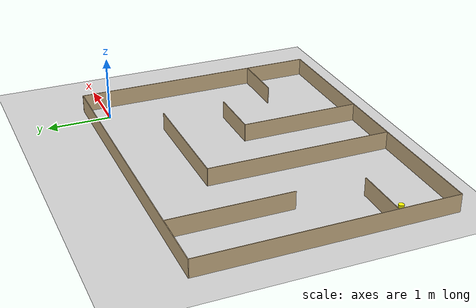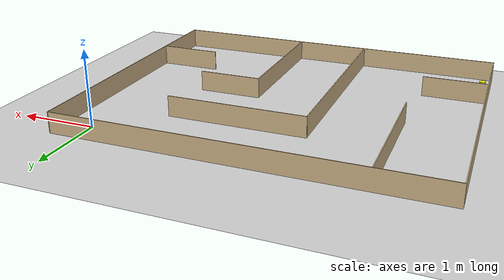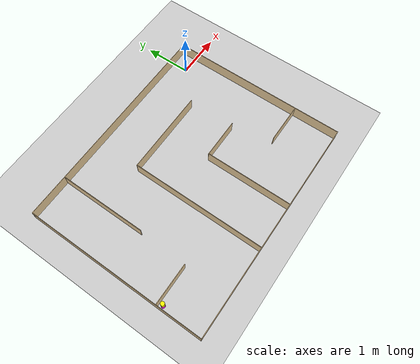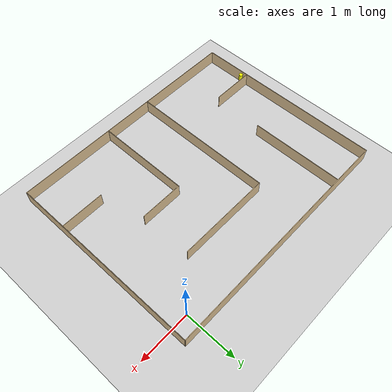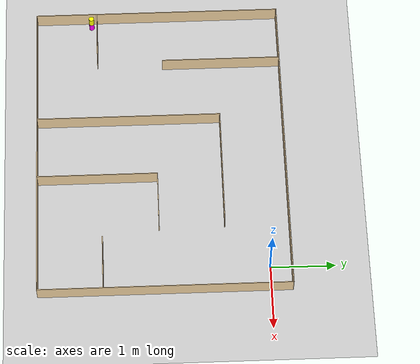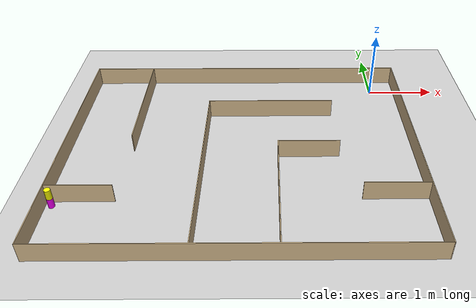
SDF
<sdf version="1.4">
  <world name="default">

    <scene>
      <ambient>0.4 0.4 0.4 1</ambient>
      <background>0.7 0.7 0.7 1</background>
      <shadows>true</shadows>
    </scene>

    <!-- A global light source -->
    <include>
      <uri>model://sun</uri>
    </include>

    <!-- A ground plane -->
    <include>
      <uri>model://ground_plane</uri>
    </include>

    <!-- My Maze -->
    <include>
      <uri>model://maze_4</uri>
	<pose>-2.05 -1.60 0 0 0 0</pose>
    </include>

    <!-- My Beacon -->
    <include>
      <uri>model://beacon_4</uri>
	<pose>-4.39 -2.65 0 0 0 0</pose>
    </include>

    <physics type="ode">
      <real_time_update_rate>1000.0</real_time_update_rate>
      <max_step_size>0.001</max_step_size>
      <real_time_factor>1</real_time_factor>
      <ode>
        <solver>
          <type>quick</type>
          <iters>150</iters>
          <precon_iters>0</precon_iters>
          <sor>1.400000</sor>
          <use_dynamic_moi_rescaling>1</use_dynamic_moi_rescaling>
        </solver>
        <constraints>
          <cfm>0.00001</cfm>
          <erp>0.2</erp>
          <contact_max_correcting_vel>2000.000000</contact_max_correcting_vel>
          <contact_surface_layer>0.01000</contact_surface_layer>
        </constraints>
      </ode>
    </physics>
  </world>

</sdf>

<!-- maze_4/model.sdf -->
<sdf version='1.6'>
  <model name='maze_4'>
    <link name='Wall_0'>
      <pose frame=''>0 -1.925 0 0 -0 0</pose>
      <self_collide>0</self_collide>
      <kinematic>0</kinematic>
      <visual name='Wall_0_Visual'>
        <pose frame=''>0 0 0.14 0 -0 0</pose>
        <geometry>
          <box>
            <size>4.86 0.01 0.28</size>
          </box>
        </geometry>
        <material>
          <script>
            <uri>file://media/materials/scripts/gazebo.material</uri>
            <name>Gazebo/Grey</name>
          </script>
          <ambient>0.921569 0.807843 0.615686 1</ambient>
          <diffuse>0.7 0.7 0.7 1</diffuse>
          <specular>0.01 0.01 0.01 1</specular>
          <emissive>0 0 0 1</emissive>
        </material>
        <cast_shadows>1</cast_shadows>
        <transparency>0</transparency>
      </visual>
      <collision name='Wall_0_Collision'>
        <laser_retro>0</laser_retro>
        <max_contacts>10</max_contacts>
        <pose frame=''>0 0 0.14 0 -0 0</pose>
        <geometry>
          <box>
            <size>4.86 0.01 0.28</size>
          </box>
        </geometry>
        <surface>
          <friction>
            <ode>
              <mu>1</mu>
              <mu2>1</mu2>
              <fdir1>0 0 0</fdir1>
              <slip1>0</slip1>
              <slip2>0</slip2>
            </ode>
            <torsional>
              <coefficient>1</coefficient>
              <patch_radius>0</patch_radius>
              <surface_radius>0</surface_radius>
              <use_patch_radius>1</use_patch_radius>
              <ode>
                <slip>0</slip>
              </ode>
            </torsional>
          </friction>
          <bounce>
            <restitution_coefficient>0</restitution_coefficient>
            <threshold>1e+06</threshold>
          </bounce>
          <contact>
            <collide_without_contact>0</collide_without_contact>
            <collide_without_contact_bitmask>1</collide_without_contact_bitmask>
            <collide_bitmask>1</collide_bitmask>
            <ode>
              <soft_cfm>0</soft_cfm>
              <soft_erp>0.2</soft_erp>
              <kp>1e+13</kp>
              <kd>1</kd>
              <max_vel>0.01</max_vel>
              <min_depth>0</min_depth>
            </ode>
            <bullet>
              <split_impulse>1</split_impulse>
              <split_impulse_penetration_threshold>-0.01</split_impulse_penetration_threshold>
              <soft_cfm>0</soft_cfm>
              <soft_erp>0.2</soft_erp>
              <kp>1e+13</kp>
              <kd>1</kd>
            </bullet>
          </contact>
        </surface>
      </collision>
    </link>
    <link name='Wall_1'>
      <pose frame=''>2.425 0 0 0 -0 1.5708</pose>
      <self_collide>0</self_collide>
      <kinematic>0</kinematic>
      <visual name='Wall_1_Visual'>
        <pose frame=''>0 0 0.14 0 -0 0</pose>
        <geometry>
          <box>
            <size>3.86 0.01 0.28</size>
          </box>
        </geometry>
        <material>
          <script>
            <uri>file://media/materials/scripts/gazebo.material</uri>
            <name>Gazebo/Grey</name>
          </script>
          <ambient>0.921569 0.807843 0.615686 1</ambient>
          <diffuse>0.7 0.7 0.7 1</diffuse>
          <specular>0.01 0.01 0.01 1</specular>
          <emissive>0 0 0 1</emissive>
        </material>
        <cast_shadows>1</cast_shadows>
        <transparency>0</transparency>
      </visual>
      <collision name='Wall_1_Collision'>
        <laser_retro>0</laser_retro>
        <max_contacts>10</max_contacts>
        <pose frame=''>0 0 0.14 0 -0 0</pose>
        <geometry>
          <box>
            <size>3.86 0.01 0.28</size>
          </box>
        </geometry>
        <surface>
          <friction>
            <ode>
              <mu>1</mu>
              <mu2>1</mu2>
              <fdir1>0 0 0</fdir1>
              <slip1>0</slip1>
              <slip2>0</slip2>
            </ode>
            <torsional>
              <coefficient>1</coefficient>
              <patch_radius>0</patch_radius>
              <surface_radius>0</surface_radius>
              <use_patch_radius>1</use_patch_radius>
              <ode>
                <slip>0</slip>
              </ode>
            </torsional>
          </friction>
          <bounce>
            <restitution_coefficient>0</restitution_coefficient>
            <threshold>1e+06</threshold>
          </bounce>
          <contact>
            <collide_without_contact>0</collide_without_contact>
            <collide_without_contact_bitmask>1</collide_without_contact_bitmask>
            <collide_bitmask>1</collide_bitmask>
            <ode>
              <soft_cfm>0</soft_cfm>
              <soft_erp>0.2</soft_erp>
              <kp>1e+13</kp>
              <kd>1</kd>
              <max_vel>0.01</max_vel>
              <min_depth>0</min_depth>
            </ode>
            <bullet>
              <split_impulse>1</split_impulse>
              <split_impulse_penetration_threshold>-0.01</split_impulse_penetration_threshold>
              <soft_cfm>0</soft_cfm>
              <soft_erp>0.2</soft_erp>
              <kp>1e+13</kp>
              <kd>1</kd>
            </bullet>
          </contact>
        </surface>
      </collision>
    </link>
    <link name='Wall_10'>
      <pose frame=''>0.413 0.938753 0 0 -0 0</pose>
      <self_collide>0</self_collide>
      <kinematic>0</kinematic>
      <visual name='Wall_10_Visual'>
        <pose frame=''>0 0 0.14 0 -0 0</pose>
        <geometry>
          <box>
            <size>1.85977 0.01 0.28</size>
          </box>
        </geometry>
        <material>
          <script>
            <uri>file://media/materials/scripts/gazebo.material</uri>
            <name>Gazebo/Grey</name>
          </script>
          <ambient>0.921569 0.807843 0.615686 1</ambient>
          <diffuse>0.7 0.7 0.7 1</diffuse>
          <specular>0.01 0.01 0.01 1</specular>
          <emissive>0 0 0 1</emissive>
        </material>
        <cast_shadows>1</cast_shadows>
        <transparency>0</transparency>
      </visual>
      <collision name='Wall_10_Collision'>
        <laser_retro>0</laser_retro>
        <max_contacts>10</max_contacts>
        <pose frame=''>0 0 0.14 0 -0 0</pose>
        <geometry>
          <box>
            <size>1.85977 0.01 0.28</size>
          </box>
        </geometry>
        <surface>
          <friction>
            <ode>
              <mu>1</mu>
              <mu2>1</mu2>
              <fdir1>0 0 0</fdir1>
              <slip1>0</slip1>
              <slip2>0</slip2>
            </ode>
            <torsional>
              <coefficient>1</coefficient>
              <patch_radius>0</patch_radius>
              <surface_radius>0</surface_radius>
              <use_patch_radius>1</use_patch_radius>
              <ode>
                <slip>0</slip>
              </ode>
            </torsional>
          </friction>
          <bounce>
            <restitution_coefficient>0</restitution_coefficient>
            <threshold>1e+06</threshold>
          </bounce>
          <contact>
            <collide_without_contact>0</collide_without_contact>
            <collide_without_contact_bitmask>1</collide_without_contact_bitmask>
            <collide_bitmask>1</collide_bitmask>
            <ode>
              <soft_cfm>0</soft_cfm>
              <soft_erp>0.2</soft_erp>
              <kp>1e+13</kp>
              <kd>1</kd>
              <max_vel>0.01</max_vel>
              <min_depth>0</min_depth>
            </ode>
            <bullet>
              <split_impulse>1</split_impulse>
              <split_impulse_penetration_threshold>-0.01</split_impulse_penetration_threshold>
              <soft_cfm>0</soft_cfm>
              <soft_erp>0.2</soft_erp>
              <kp>1e+13</kp>
              <kd>1</kd>
            </bullet>
          </contact>
        </surface>
      </collision>
    </link>
    <link name='Wall_12'>
      <pose frame=''>0.509 -0.996252 0 0 -0 1.5708</pose>
      <self_collide>0</self_collide>
      <kinematic>0</kinematic>
      <visual name='Wall_12_Visual'>
        <pose frame=''>0 0 0.14 0 -0 0</pose>
        <geometry>
          <box>
            <size>1.8597 0.01 0.28</size>
          </box>
        </geometry>
        <material>
          <script>
            <uri>file://media/materials/scripts/gazebo.material</uri>
            <name>Gazebo/Grey</name>
          </script>
          <ambient>0.921569 0.807843 0.615686 1</ambient>
          <diffuse>0.7 0.7 0.7 1</diffuse>
          <specular>0.01 0.01 0.01 1</specular>
          <emissive>0 0 0 1</emissive>
        </material>
        <cast_shadows>1</cast_shadows>
        <transparency>0</transparency>
      </visual>
      <collision name='Wall_12_Collision'>
        <laser_retro>0</laser_retro>
        <max_contacts>10</max_contacts>
        <pose frame=''>0 0 0.14 0 -0 0</pose>
        <geometry>
          <box>
            <size>1.8597 0.01 0.28</size>
          </box>
        </geometry>
        <surface>
          <friction>
            <ode>
              <mu>1</mu>
              <mu2>1</mu2>
              <fdir1>0 0 0</fdir1>
              <slip1>0</slip1>
              <slip2>0</slip2>
            </ode>
            <torsional>
              <coefficient>1</coefficient>
              <patch_radius>0</patch_radius>
              <surface_radius>0</surface_radius>
              <use_patch_radius>1</use_patch_radius>
              <ode>
                <slip>0</slip>
              </ode>
            </torsional>
          </friction>
          <bounce>
            <restitution_coefficient>0</restitution_coefficient>
            <threshold>1e+06</threshold>
          </bounce>
          <contact>
            <collide_without_contact>0</collide_without_contact>
            <collide_without_contact_bitmask>1</collide_without_contact_bitmask>
            <collide_bitmask>1</collide_bitmask>
            <ode>
              <soft_cfm>0</soft_cfm>
              <soft_erp>0.2</soft_erp>
              <kp>1e+13</kp>
              <kd>1</kd>
              <max_vel>0.01</max_vel>
              <min_depth>0</min_depth>
            </ode>
            <bullet>
              <split_impulse>1</split_impulse>
              <split_impulse_penetration_threshold>-0.01</split_impulse_penetration_threshold>
              <soft_cfm>0</soft_cfm>
              <soft_erp>0.2</soft_erp>
              <kp>1e+13</kp>
              <kd>1</kd>
            </bullet>
          </contact>
        </surface>
      </collision>
    </link>
    <link name='Wall_13'>
      <pose frame=''>0.934 -0.066769 0 0 -0 0</pose>
      <self_collide>0</self_collide>
      <kinematic>0</kinematic>
      <visual name='Wall_13_Visual'>
        <pose frame=''>0 0 0.14 0 -0 0</pose>
        <geometry>
          <box>
            <size>0.85956 0.01 0.28</size>
          </box>
        </geometry>
        <material>
          <script>
            <uri>file://media/materials/scripts/gazebo.material</uri>
            <name>Gazebo/Grey</name>
          </script>
          <ambient>0.921569 0.807843 0.615686 1</ambient>
          <diffuse>0.7 0.7 0.7 1</diffuse>
          <specular>0.01 0.01 0.01 1</specular>
          <emissive>0 0 0 1</emissive>
        </material>
        <cast_shadows>1</cast_shadows>
        <transparency>0</transparency>
      </visual>
      <collision name='Wall_13_Collision'>
        <laser_retro>0</laser_retro>
        <max_contacts>10</max_contacts>
        <pose frame=''>0 0 0.14 0 -0 0</pose>
        <geometry>
          <box>
            <size>0.85956 0.01 0.28</size>
          </box>
        </geometry>
        <surface>
          <friction>
            <ode>
              <mu>1</mu>
              <mu2>1</mu2>
              <fdir1>0 0 0</fdir1>
              <slip1>0</slip1>
              <slip2>0</slip2>
            </ode>
            <torsional>
              <coefficient>1</coefficient>
              <patch_radius>0</patch_radius>
              <surface_radius>0</surface_radius>
              <use_patch_radius>1</use_patch_radius>
              <ode>
                <slip>0</slip>
              </ode>
            </torsional>
          </friction>
          <bounce>
            <restitution_coefficient>0</restitution_coefficient>
            <threshold>1e+06</threshold>
          </bounce>
          <contact>
            <collide_without_contact>0</collide_without_contact>
            <collide_without_contact_bitmask>1</collide_without_contact_bitmask>
            <collide_bitmask>1</collide_bitmask>
            <ode>
              <soft_cfm>0</soft_cfm>
              <soft_erp>0.2</soft_erp>
              <kp>1e+13</kp>
              <kd>1</kd>
              <max_vel>0.01</max_vel>
              <min_depth>0</min_depth>
            </ode>
            <bullet>
              <split_impulse>1</split_impulse>
              <split_impulse_penetration_threshold>-0.01</split_impulse_penetration_threshold>
              <soft_cfm>0</soft_cfm>
              <soft_erp>0.2</soft_erp>
              <kp>1e+13</kp>
              <kd>1</kd>
            </bullet>
          </contact>
        </surface>
      </collision>
    </link>
    <link name='Wall_15'>
      <pose frame=''>1.997 -0.934 0 0 -0 3.14159</pose>
      <self_collide>0</self_collide>
      <kinematic>0</kinematic>
      <visual name='Wall_15_Visual'>
        <pose frame=''>0 0 0.14 0 -0 0</pose>
        <geometry>
          <box>
            <size>0.860397 0.01 0.28</size>
          </box>
        </geometry>
        <material>
          <script>
            <uri>file://media/materials/scripts/gazebo.material</uri>
            <name>Gazebo/Grey</name>
          </script>
          <ambient>0.921569 0.807843 0.615686 1</ambient>
          <diffuse>0.7 0.7 0.7 1</diffuse>
          <specular>0.01 0.01 0.01 1</specular>
          <emissive>0 0 0 1</emissive>
        </material>
        <cast_shadows>1</cast_shadows>
        <transparency>0</transparency>
      </visual>
      <collision name='Wall_15_Collision'>
        <laser_retro>0</laser_retro>
        <max_contacts>10</max_contacts>
        <pose frame=''>0 0 0.14 0 -0 0</pose>
        <geometry>
          <box>
            <size>0.860397 0.01 0.28</size>
          </box>
        </geometry>
        <surface>
          <friction>
            <ode>
              <mu>1</mu>
              <mu2>1</mu2>
              <fdir1>0 0 0</fdir1>
              <slip1>0</slip1>
              <slip2>0</slip2>
            </ode>
            <torsional>
              <coefficient>1</coefficient>
              <patch_radius>0</patch_radius>
              <surface_radius>0</surface_radius>
              <use_patch_radius>1</use_patch_radius>
              <ode>
                <slip>0</slip>
              </ode>
            </torsional>
          </friction>
          <bounce>
            <restitution_coefficient>0</restitution_coefficient>
            <threshold>1e+06</threshold>
          </bounce>
          <contact>
            <collide_without_contact>0</collide_without_contact>
            <collide_without_contact_bitmask>1</collide_without_contact_bitmask>
            <collide_bitmask>1</collide_bitmask>
            <ode>
              <soft_cfm>0</soft_cfm>
              <soft_erp>0.2</soft_erp>
              <kp>1e+13</kp>
              <kd>1</kd>
              <max_vel>0.01</max_vel>
              <min_depth>0</min_depth>
            </ode>
            <bullet>
              <split_impulse>1</split_impulse>
              <split_impulse_penetration_threshold>-0.01</split_impulse_penetration_threshold>
              <soft_cfm>0</soft_cfm>
              <soft_erp>0.2</soft_erp>
              <kp>1e+13</kp>
              <kd>1</kd>
            </bullet>
          </contact>
        </surface>
      </collision>
    </link>
    <link name='Wall_2'>
      <pose frame=''>0 1.925 0 0 -0 3.14159</pose>
      <self_collide>0</self_collide>
      <kinematic>0</kinematic>
      <visual name='Wall_2_Visual'>
        <pose frame=''>0 0 0.14 0 -0 0</pose>
        <geometry>
          <box>
            <size>4.86028 0.01 0.28</size>
          </box>
        </geometry>
        <material>
          <script>
            <uri>file://media/materials/scripts/gazebo.material</uri>
            <name>Gazebo/Grey</name>
          </script>
          <ambient>0.921569 0.807843 0.615686 1</ambient>
          <diffuse>0.7 0.7 0.7 1</diffuse>
          <specular>0.01 0.01 0.01 1</specular>
          <emissive>0 0 0 1</emissive>
        </material>
        <cast_shadows>1</cast_shadows>
        <transparency>0</transparency>
      </visual>
      <collision name='Wall_2_Collision'>
        <laser_retro>0</laser_retro>
        <max_contacts>10</max_contacts>
        <pose frame=''>0 0 0.14 0 -0 0</pose>
        <geometry>
          <box>
            <size>4.86028 0.01 0.28</size>
          </box>
        </geometry>
        <surface>
          <friction>
            <ode>
              <mu>1</mu>
              <mu2>1</mu2>
              <fdir1>0 0 0</fdir1>
              <slip1>0</slip1>
              <slip2>0</slip2>
            </ode>
            <torsional>
              <coefficient>1</coefficient>
              <patch_radius>0</patch_radius>
              <surface_radius>0</surface_radius>
              <use_patch_radius>1</use_patch_radius>
              <ode>
                <slip>0</slip>
              </ode>
            </torsional>
          </friction>
          <bounce>
            <restitution_coefficient>0</restitution_coefficient>
            <threshold>1e+06</threshold>
          </bounce>
          <contact>
            <collide_without_contact>0</collide_without_contact>
            <collide_without_contact_bitmask>1</collide_without_contact_bitmask>
            <collide_bitmask>1</collide_bitmask>
            <ode>
              <soft_cfm>0</soft_cfm>
              <soft_erp>0.2</soft_erp>
              <kp>1e+13</kp>
              <kd>1</kd>
              <max_vel>0.01</max_vel>
              <min_depth>0</min_depth>
            </ode>
            <bullet>
              <split_impulse>1</split_impulse>
              <split_impulse_penetration_threshold>-0.01</split_impulse_penetration_threshold>
              <soft_cfm>0</soft_cfm>
              <soft_erp>0.2</soft_erp>
              <kp>1e+13</kp>
              <kd>1</kd>
            </bullet>
          </contact>
        </surface>
      </collision>
    </link>
    <link name='Wall_3'>
      <pose frame=''>-2.425 0 0 0 0 -1.5708</pose>
      <self_collide>0</self_collide>
      <kinematic>0</kinematic>
      <visual name='Wall_3_Visual'>
        <pose frame=''>0 0 0.14 0 -0 0</pose>
        <geometry>
          <box>
            <size>3.85967 0.01 0.28</size>
          </box>
        </geometry>
        <material>
          <script>
            <uri>file://media/materials/scripts/gazebo.material</uri>
            <name>Gazebo/Grey</name>
          </script>
          <ambient>0.921569 0.807843 0.615686 1</ambient>
          <diffuse>0.7 0.7 0.7 1</diffuse>
          <specular>0.01 0.01 0.01 1</specular>
          <emissive>0 0 0 1</emissive>
        </material>
        <cast_shadows>1</cast_shadows>
        <transparency>0</transparency>
      </visual>
      <collision name='Wall_3_Collision'>
        <laser_retro>0</laser_retro>
        <max_contacts>10</max_contacts>
        <pose frame=''>0 0 0.14 0 -0 0</pose>
        <geometry>
          <box>
            <size>3.85967 0.01 0.28</size>
          </box>
        </geometry>
        <surface>
          <friction>
            <ode>
              <mu>1</mu>
              <mu2>1</mu2>
              <fdir1>0 0 0</fdir1>
              <slip1>0</slip1>
              <slip2>0</slip2>
            </ode>
            <torsional>
              <coefficient>1</coefficient>
              <patch_radius>0</patch_radius>
              <surface_radius>0</surface_radius>
              <use_patch_radius>1</use_patch_radius>
              <ode>
                <slip>0</slip>
              </ode>
            </torsional>
          </friction>
          <bounce>
            <restitution_coefficient>0</restitution_coefficient>
            <threshold>1e+06</threshold>
          </bounce>
          <contact>
            <collide_without_contact>0</collide_without_contact>
            <collide_without_contact_bitmask>1</collide_without_contact_bitmask>
            <collide_bitmask>1</collide_bitmask>
            <ode>
              <soft_cfm>0</soft_cfm>
              <soft_erp>0.2</soft_erp>
              <kp>1e+13</kp>
              <kd>1</kd>
              <max_vel>0.01</max_vel>
              <min_depth>0</min_depth>
            </ode>
            <bullet>
              <split_impulse>1</split_impulse>
              <split_impulse_penetration_threshold>-0.01</split_impulse_penetration_threshold>
              <soft_cfm>0</soft_cfm>
              <soft_erp>0.2</soft_erp>
              <kp>1e+13</kp>
              <kd>1</kd>
            </bullet>
          </contact>
        </surface>
      </collision>
    </link>
    <link name='Wall_5'>
      <pose frame=''>-1.993 -0.964 0 0 -0 0</pose>
      <self_collide>0</self_collide>
      <kinematic>0</kinematic>
      <visual name='Wall_5_Visual'>
        <pose frame=''>0 0 0.14 0 -0 0</pose>
        <geometry>
          <box>
            <size>0.860284 0.01 0.28</size>
          </box>
        </geometry>
        <material>
          <script>
            <uri>file://media/materials/scripts/gazebo.material</uri>
            <name>Gazebo/Grey</name>
          </script>
          <ambient>0.921569 0.807843 0.615686 1</ambient>
          <diffuse>0.7 0.7 0.7 1</diffuse>
          <specular>0.01 0.01 0.01 1</specular>
          <emissive>0 0 0 1</emissive>
        </material>
        <cast_shadows>1</cast_shadows>
        <transparency>0</transparency>
      </visual>
      <collision name='Wall_5_Collision'>
        <laser_retro>0</laser_retro>
        <max_contacts>10</max_contacts>
        <pose frame=''>0 0 0.14 0 -0 0</pose>
        <geometry>
          <box>
            <size>0.860284 0.01 0.28</size>
          </box>
        </geometry>
        <surface>
          <friction>
            <ode>
              <mu>1</mu>
              <mu2>1</mu2>
              <fdir1>0 0 0</fdir1>
              <slip1>0</slip1>
              <slip2>0</slip2>
            </ode>
            <torsional>
              <coefficient>1</coefficient>
              <patch_radius>0</patch_radius>
              <surface_radius>0</surface_radius>
              <use_patch_radius>1</use_patch_radius>
              <ode>
                <slip>0</slip>
              </ode>
            </torsional>
          </friction>
          <bounce>
            <restitution_coefficient>0</restitution_coefficient>
            <threshold>1e+06</threshold>
          </bounce>
          <contact>
            <collide_without_contact>0</collide_without_contact>
            <collide_without_contact_bitmask>1</collide_without_contact_bitmask>
            <collide_bitmask>1</collide_bitmask>
            <ode>
              <soft_cfm>0</soft_cfm>
              <soft_erp>0.2</soft_erp>
              <kp>1e+13</kp>
              <kd>1</kd>
              <max_vel>0.01</max_vel>
              <min_depth>0</min_depth>
            </ode>
            <bullet>
              <split_impulse>1</split_impulse>
              <split_impulse_penetration_threshold>-0.01</split_impulse_penetration_threshold>
              <soft_cfm>0</soft_cfm>
              <soft_erp>0.2</soft_erp>
              <kp>1e+13</kp>
              <kd>1</kd>
            </bullet>
          </contact>
        </surface>
      </collision>
    </link>
    <link name='Wall_7'>
      <pose frame=''>-1.52173 0.99369 0 0 0 -1.5708</pose>
      <self_collide>0</self_collide>
      <kinematic>0</kinematic>
      <visual name='Wall_7_Visual'>
        <pose frame=''>0 0 0.14 0 -0 0</pose>
        <geometry>
          <box>
            <size>1.86 0.01 0.28</size>
          </box>
        </geometry>
        <material>
          <script>
            <uri>file://media/materials/scripts/gazebo.material</uri>
            <name>Gazebo/Grey</name>
          </script>
          <ambient>0.921569 0.807843 0.615686 1</ambient>
          <diffuse>0.7 0.7 0.7 1</diffuse>
          <specular>0.01 0.01 0.01 1</specular>
          <emissive>0 0 0 1</emissive>
        </material>
        <cast_shadows>1</cast_shadows>
        <transparency>0</transparency>
      </visual>
      <collision name='Wall_7_Collision'>
        <laser_retro>0</laser_retro>
        <max_contacts>10</max_contacts>
        <pose frame=''>0 0 0.14 0 -0 0</pose>
        <geometry>
          <box>
            <size>1.86 0.01 0.28</size>
          </box>
        </geometry>
        <surface>
          <friction>
            <ode>
              <mu>1</mu>
              <mu2>1</mu2>
              <fdir1>0 0 0</fdir1>
              <slip1>0</slip1>
              <slip2>0</slip2>
            </ode>
            <torsional>
              <coefficient>1</coefficient>
              <patch_radius>0</patch_radius>
              <surface_radius>0</surface_radius>
              <use_patch_radius>1</use_patch_radius>
              <ode>
                <slip>0</slip>
              </ode>
            </torsional>
          </friction>
          <bounce>
            <restitution_coefficient>0</restitution_coefficient>
            <threshold>1e+06</threshold>
          </bounce>
          <contact>
            <collide_without_contact>0</collide_without_contact>
            <collide_without_contact_bitmask>1</collide_without_contact_bitmask>
            <collide_bitmask>1</collide_bitmask>
            <ode>
              <soft_cfm>0</soft_cfm>
              <soft_erp>0.2</soft_erp>
              <kp>1e+13</kp>
              <kd>1</kd>
              <max_vel>0.01</max_vel>
              <min_depth>0</min_depth>
            </ode>
            <bullet>
              <split_impulse>1</split_impulse>
              <split_impulse_penetration_threshold>-0.01</split_impulse_penetration_threshold>
              <soft_cfm>0</soft_cfm>
              <soft_erp>0.2</soft_erp>
              <kp>1e+13</kp>
              <kd>1</kd>
            </bullet>
          </contact>
        </surface>
      </collision>
    </link>
    <link name='Wall_9'>
      <pose frame=''>-0.512 -0.494441 0 0 -0 1.5708</pose>
      <self_collide>0</self_collide>
      <kinematic>0</kinematic>
      <visual name='Wall_9_Visual'>
        <pose frame=''>0 0 0.14 0 -0 0</pose>
        <geometry>
          <box>
            <size>2.86 0.01 0.28</size>
          </box>
        </geometry>
        <material>
          <script>
            <uri>file://media/materials/scripts/gazebo.material</uri>
            <name>Gazebo/Grey</name>
          </script>
          <ambient>0.921569 0.807843 0.615686 1</ambient>
          <diffuse>0.7 0.7 0.7 1</diffuse>
          <specular>0.01 0.01 0.01 1</specular>
          <emissive>0 0 0 1</emissive>
        </material>
        <cast_shadows>1</cast_shadows>
        <transparency>0</transparency>
      </visual>
      <collision name='Wall_9_Collision'>
        <laser_retro>0</laser_retro>
        <max_contacts>10</max_contacts>
        <pose frame=''>0 0 0.14 0 -0 0</pose>
        <geometry>
          <box>
            <size>2.86 0.01 0.28</size>
          </box>
        </geometry>
        <surface>
          <friction>
            <ode>
              <mu>1</mu>
              <mu2>1</mu2>
              <fdir1>0 0 0</fdir1>
              <slip1>0</slip1>
              <slip2>0</slip2>
            </ode>
            <torsional>
              <coefficient>1</coefficient>
              <patch_radius>0</patch_radius>
              <surface_radius>0</surface_radius>
              <use_patch_radius>1</use_patch_radius>
              <ode>
                <slip>0</slip>
              </ode>
            </torsional>
          </friction>
          <bounce>
            <restitution_coefficient>0</restitution_coefficient>
            <threshold>1e+06</threshold>
          </bounce>
          <contact>
            <collide_without_contact>0</collide_without_contact>
            <collide_without_contact_bitmask>1</collide_without_contact_bitmask>
            <collide_bitmask>1</collide_bitmask>
            <ode>
              <soft_cfm>0</soft_cfm>
              <soft_erp>0.2</soft_erp>
              <kp>1e+13</kp>
              <kd>1</kd>
              <max_vel>0.01</max_vel>
              <min_depth>0</min_depth>
            </ode>
            <bullet>
              <split_impulse>1</split_impulse>
              <split_impulse_penetration_threshold>-0.01</split_impulse_penetration_threshold>
              <soft_cfm>0</soft_cfm>
              <soft_erp>0.2</soft_erp>
              <kp>1e+13</kp>
              <kd>1</kd>
            </bullet>
          </contact>
        </surface>
      </collision>
    </link>
    <static>1</static>
    <allow_auto_disable>1</allow_auto_disable>
  </model>
</sdf>

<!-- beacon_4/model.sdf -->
<sdf version='1.4'>
  <model name="beacon_4">
	<static>true</static>
          <link name='chassis_lower'>
            <pose>0 0 0.07 0 0 0</pose>

            <collision name='collision'>
              <geometry>
                <cylinder>
                  <radius>.04</radius>
		  <length>.140</length>
                </cylinder>
              </geometry>
            </collision>

            <visual name='visual'>
              <geometry>
                <cylinder>
                  <radius>.04</radius>
		  <length>.140</length>
                </cylinder>
              </geometry>
        	<material>
          	  <ambient>1 0 1 1</ambient>
          	  <diffuse>1 0 1 1</diffuse>
          	  <specular>0.1 0.1 0.1 1</specular>
         	  <emissive>0 0 0 0</emissive>
        	</material>
            </visual>
          </link>

          <link name='chassis_upper'>
            <pose>0 0 0.21 0 0 0</pose>

            <collision name='collision'>
              <geometry>
                <cylinder>
                  <radius>.04</radius>
		  <length>.140</length>
                </cylinder>
              </geometry>
            </collision>

            <visual name='visual'>
              <geometry>
                <cylinder>
                  <radius>.04</radius>
		  <length>.140</length>
                </cylinder>
              </geometry>
        	<material>
          	  <ambient>1 1 0 1</ambient>
          	  <diffuse>1 1 0 1</diffuse>
          	  <specular>0.1 0.1 0.1 1</specular>
         	  <emissive>0 0 0 0</emissive>
        	</material>
            </visual>
          </link>

  </model>
</sdf>
